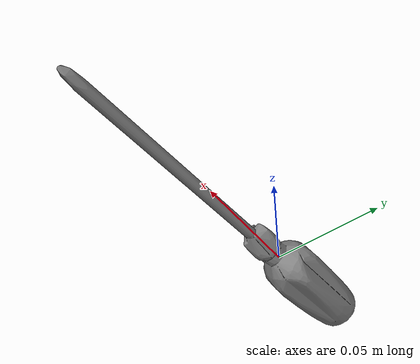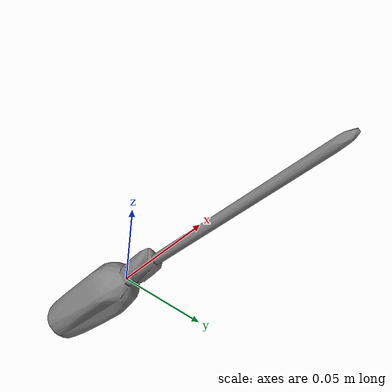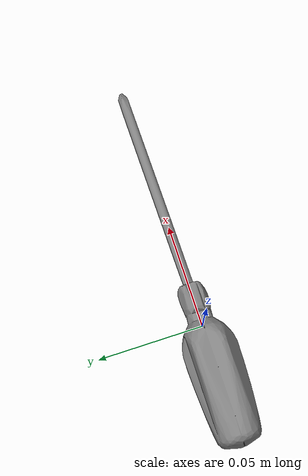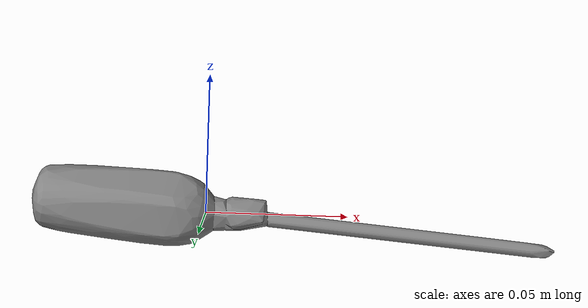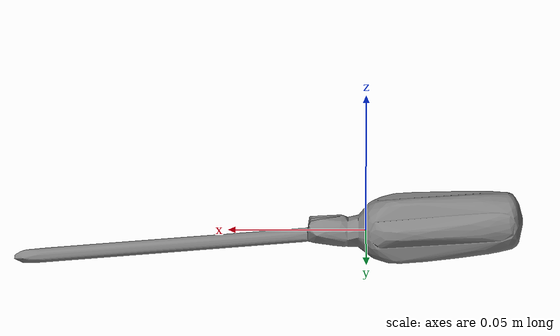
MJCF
<mujoco model="screwdriver_Craftsman_Grip_Screwdriver_Phillips_Cushion_M">
  <default>
    <default class="visual">
      <geom group="2" type="mesh" contype="0" conaffinity="0" />
    </default>
    <default class="collision">
      <geom group="3" type="mesh" />
    </default>
  </default>
  <asset>
    <mesh file="screwdriver_Craftsman_Grip_Screwdriver_Phillips_Cushion_M.stl" />
    <mesh file="screwdriver_Craftsman_Grip_Screwdriver_Phillips_Cushion_M_collision_0.stl" />
    <mesh file="screwdriver_Craftsman_Grip_Screwdriver_Phillips_Cushion_M_collision_1.stl" />
    <mesh file="screwdriver_Craftsman_Grip_Screwdriver_Phillips_Cushion_M_collision_2.stl" />
    <mesh file="screwdriver_Craftsman_Grip_Screwdriver_Phillips_Cushion_M_collision_3.stl" />
    <mesh file="screwdriver_Craftsman_Grip_Screwdriver_Phillips_Cushion_M_collision_4.stl" />
    <mesh file="screwdriver_Craftsman_Grip_Screwdriver_Phillips_Cushion_M_collision_5.stl" />
    <mesh file="screwdriver_Craftsman_Grip_Screwdriver_Phillips_Cushion_M_collision_6.stl" />
    <mesh file="screwdriver_Craftsman_Grip_Screwdriver_Phillips_Cushion_M_collision_7.stl" />
    <mesh file="screwdriver_Craftsman_Grip_Screwdriver_Phillips_Cushion_M_collision_8.stl" />
    <mesh file="screwdriver_Craftsman_Grip_Screwdriver_Phillips_Cushion_M_collision_9.stl" />
    <mesh file="screwdriver_Craftsman_Grip_Screwdriver_Phillips_Cushion_M_collision_10.stl" />
    <mesh file="screwdriver_Craftsman_Grip_Screwdriver_Phillips_Cushion_M_collision_11.stl" />
    <mesh file="screwdriver_Craftsman_Grip_Screwdriver_Phillips_Cushion_M_collision_12.stl" />
    <mesh file="screwdriver_Craftsman_Grip_Screwdriver_Phillips_Cushion_M_collision_13.stl" />
    <mesh file="screwdriver_Craftsman_Grip_Screwdriver_Phillips_Cushion_M_collision_14.stl" />
    <mesh file="screwdriver_Craftsman_Grip_Screwdriver_Phillips_Cushion_M_collision_15.stl" />
  </asset>
  <worldbody>
    <body name="screwdriver_Craftsman_Grip_Screwdriver_Phillips_Cushion_M">
      <geom mesh="screwdriver_Craftsman_Grip_Screwdriver_Phillips_Cushion_M" class="visual" />
      <geom mesh="screwdriver_Craftsman_Grip_Screwdriver_Phillips_Cushion_M_collision_0" class="collision" />
      <geom mesh="screwdriver_Craftsman_Grip_Screwdriver_Phillips_Cushion_M_collision_1" class="collision" />
      <geom mesh="screwdriver_Craftsman_Grip_Screwdriver_Phillips_Cushion_M_collision_2" class="collision" />
      <geom mesh="screwdriver_Craftsman_Grip_Screwdriver_Phillips_Cushion_M_collision_3" class="collision" />
      <geom mesh="screwdriver_Craftsman_Grip_Screwdriver_Phillips_Cushion_M_collision_4" class="collision" />
      <geom mesh="screwdriver_Craftsman_Grip_Screwdriver_Phillips_Cushion_M_collision_5" class="collision" />
      <geom mesh="screwdriver_Craftsman_Grip_Screwdriver_Phillips_Cushion_M_collision_6" class="collision" />
      <geom mesh="screwdriver_Craftsman_Grip_Screwdriver_Phillips_Cushion_M_collision_7" class="collision" />
      <geom mesh="screwdriver_Craftsman_Grip_Screwdriver_Phillips_Cushion_M_collision_8" class="collision" />
      <geom mesh="screwdriver_Craftsman_Grip_Screwdriver_Phillips_Cushion_M_collision_9" class="collision" />
      <geom mesh="screwdriver_Craftsman_Grip_Screwdriver_Phillips_Cushion_M_collision_10" class="collision" />
      <geom mesh="screwdriver_Craftsman_Grip_Screwdriver_Phillips_Cushion_M_collision_11" class="collision" />
      <geom mesh="screwdriver_Craftsman_Grip_Screwdriver_Phillips_Cushion_M_collision_12" class="collision" />
      <geom mesh="screwdriver_Craftsman_Grip_Screwdriver_Phillips_Cushion_M_collision_13" class="collision" />
      <geom mesh="screwdriver_Craftsman_Grip_Screwdriver_Phillips_Cushion_M_collision_14" class="collision" />
      <geom mesh="screwdriver_Craftsman_Grip_Screwdriver_Phillips_Cushion_M_collision_15" class="collision" />
    </body>
  </worldbody>
</mujoco>
